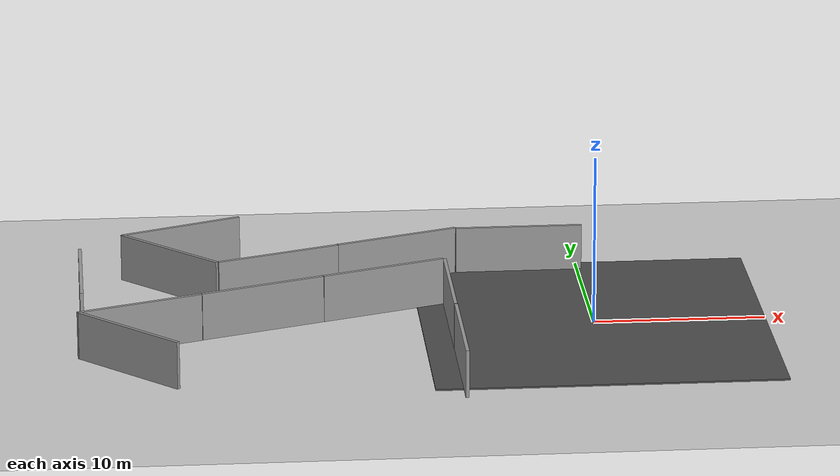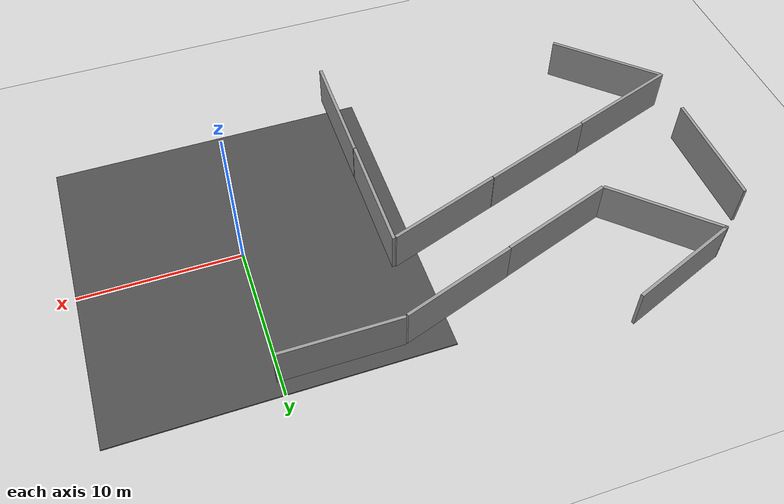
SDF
<sdf version="1.6">
 <world name="default">
  <light name="sun" type="directional">
   <pose>0 0 10 0 -0 0</pose>
   <diffuse>0.8 0.8 0.8 1</diffuse>
   <specular>0.2 0.2 0.2 1</specular>
   <attenuation>
    <range>1000</range>
    <constant>0.9</constant>
    <linear>0.01</linear>
    <quadratic>0.001</quadratic>
   </attenuation>
   <direction>-0.5 0.1 -0.9</direction>
  </light>
  <model name="ground_plane">
   <static>1</static>
   <link name="link">
    <collision name="collision">
     <geometry><plane><normal>0 0 1</normal><size>100 100</size></plane></geometry>
     <surface><friction><ode><mu>100</mu><mu2>50</mu2></ode></friction></surface>
    </collision>
    <visual name="visual">
     <cast_shadows>0</cast_shadows>
     <geometry><plane><normal>0 0 1</normal><size>100 100</size></plane></geometry>
     <material>
      <script><uri>file://media/materials/scripts/gazebo.material</uri><name>Gazebo/Grey</name></script>
     </material>
    </visual>
   </link>
  </model>
  <model name="asphalt_plane">
   <static>1</static>
   <link name="link">
    <collision name="collision"><geometry><box><size>20 20 0.1</size></box></geometry></collision>
    <visual name="visual">
     <cast_shadows>0</cast_shadows>
     <geometry><box><size>20 20 0.1</size></box></geometry>
     <material>
      <script>
       <uri>model://asphalt_plane/materials/scripts</uri>
       <uri>model://asphalt_plane/materials/textures</uri>
       <name>vrc/asphalt</name>
      </script>
     </material>
    </visual>
   </link>
  </model>
  <physics name="default_physics" default="0" type="ode">
   <ode>
    <solver>
     <type>quick</type>
     <iters>10</iters>
     <sor>1.3</sor>
     <use_dynamic_moi_rescaling>0</use_dynamic_moi_rescaling>
    </solver>
    <constraints>
     <cfm>0</cfm>
     <erp>0.2</erp>
     <contact_max_correcting_vel>100</contact_max_correcting_vel>
     <contact_surface_layer>0.001</contact_surface_layer>
    </constraints>
   </ode>
   <max_step_size>0.002</max_step_size>
   <real_time_factor>1</real_time_factor>
   <real_time_update_rate>500</real_time_update_rate>
  </physics>
  <model name="grey_wall">
   <static>1</static>
   <link name="link">
    <pose>0 0 1.4 0 -0 0</pose>
    <collision name="collision"><geometry><box><size>7.5 0.2 2.8</size></box></geometry></collision>
    <visual name="visual">
     <cast_shadows>0</cast_shadows>
     <geometry><box><size>7.5 0.2 2.8</size></box></geometry>
     <material>
      <script>
       <uri>model://grey_wall/materials/scripts</uri>
       <uri>model://grey_wall/materials/textures</uri>
       <name>vrc/grey_wall</name>
      </script>
     </material>
    </visual>
   </link>
   <pose>-8.34545 0 0 0 0 -1.57</pose>
  </model>
  <model name="grey_wall2">
   <static>1</static>
   <link name="link">
    <pose>0 0 1.4 0 -0 0</pose>
    <collision name="collision"><geometry><box><size>7.5 0.2 2.8</size></box></geometry></collision>
    <visual name="visual">
     <cast_shadows>0</cast_shadows>
     <geometry><box><size>7.5 0.2 2.8</size></box></geometry>
     <material>
      <script>
       <uri>model://grey_wall/materials/scripts</uri>
       <uri>model://grey_wall/materials/textures</uri>
       <name>vrc/grey_wall</name>
      </script>
     </material>
    </visual>
   </link>
   <pose>-3.5 9 0 0 -0 0</pose>
  </model>
  <gravity>0 0 -9.8066</gravity>
  <magnetic_field>6e-06 2.3e-05 -4.2e-05</magnetic_field>
  <atmosphere type="adiabatic"/>
  <scene><ambient>0.4 0.4 0.4 1</ambient><background>0.7 0.7 0.7 1</background><shadows>1</shadows></scene>
  <spherical_coordinates>
   <surface_model>EARTH_WGS84</surface_model>
   <latitude_deg>0</latitude_deg>
   <longitude_deg>0</longitude_deg>
   <elevation>0</elevation>
   <heading_deg>0</heading_deg>
  </spherical_coordinates>
  <model name="grey_wall_clone">
   <static>1</static>
   <link name="link">
    <pose>0 0 1.4 0 -0 0</pose>
    <collision name="collision"><geometry><box><size>7.5 0.2 2.8</size></box></geometry></collision>
    <visual name="visual">
     <cast_shadows>0</cast_shadows>
     <geometry><box><size>7.5 0.2 2.8</size></box></geometry>
     <material>
      <script>
       <uri>model://grey_wall/materials/scripts</uri>
       <uri>model://grey_wall/materials/textures</uri>
       <name>vrc/grey_wall</name>
      </script>
     </material>
    </visual>
   </link>
   <pose>-8.32494 -7.53606 0 0 0 -1.57</pose>
  </model>
  <model name="grey_wall2_clone">
   <static>1</static>
   <link name="link">
    <pose>0 0 1.4 0 -0 0</pose>
    <collision name="collision"><geometry><box><size>7.5 0.2 2.8</size></box></geometry></collision>
    <visual name="visual">
     <cast_shadows>0</cast_shadows>
     <geometry><box><size>7.5 0.2 2.8</size></box></geometry>
     <material>
      <script>
       <uri>model://grey_wall/materials/scripts</uri>
       <uri>model://grey_wall/materials/textures</uri>
       <name>vrc/grey_wall</name>
      </script>
     </material>
    </visual>
   </link>
   <pose>-10.8707 7.76517 0.049183 0 -0 0.327378</pose>
  </model>
  <model name="grey_wall2_clone_clone">
   <static>1</static>
   <link name="link">
    <pose>0 0 1.4 0 -0 0</pose>
    <collision name="collision"><geometry><box><size>7.5 0.2 2.8</size></box></geometry></collision>
    <visual name="visual">
     <cast_shadows>0</cast_shadows>
     <geometry><box><size>7.5 0.2 2.8</size></box></geometry>
     <material>
      <script>
       <uri>model://grey_wall/materials/scripts</uri>
       <uri>model://grey_wall/materials/textures</uri>
       <name>vrc/grey_wall</name>
      </script>
     </material>
    </visual>
   </link>
   <pose>-12.0199 2.49147 0.049183 0 -0 0.327378</pose>
  </model>
  <model name="grey_wall2_clone_clone_0">
   <static>1</static>
   <link name="link">
    <pose>0 0 1.4 0 -0 0</pose>
    <collision name="collision"><geometry><box><size>7.5 0.2 2.8</size></box></geometry></collision>
    <visual name="visual">
     <cast_shadows>0</cast_shadows>
     <geometry><box><size>7.5 0.2 2.8</size></box></geometry>
     <material>
      <script>
       <uri>model://grey_wall/materials/scripts</uri>
       <uri>model://grey_wall/materials/textures</uri>
       <name>vrc/grey_wall</name>
      </script>
     </material>
    </visual>
   </link>
   <pose>-17.976 5.33056 0.049183 0 -0 0.327378</pose>
  </model>
  <model name="grey_wall2_clone_clone_1">
   <static>1</static>
   <link name="link">
    <pose>0 0 1.4 0 -0 0</pose>
    <collision name="collision"><geometry><box><size>7.5 0.2 2.8</size></box></geometry></collision>
    <visual name="visual">
     <cast_shadows>0</cast_shadows>
     <geometry><box><size>7.5 0.2 2.8</size></box></geometry>
     <material>
      <script>
       <uri>model://grey_wall/materials/scripts</uri>
       <uri>model://grey_wall/materials/textures</uri>
       <name>vrc/grey_wall</name>
      </script>
     </material>
    </visual>
   </link>
   <pose>-19.1402 0.085095 0.049183 0 -0 0.327378</pose>
  </model>
  <model name="grey_wall2_clone_clone_0_clone">
   <static>1</static>
   <link name="link">
    <pose>0 0 1.4 0 -0 0</pose>
    <collision name="collision"><geometry><box><size>7.5 0.2 2.8</size></box></geometry></collision>
    <visual name="visual">
     <cast_shadows>0</cast_shadows>
     <geometry><box><size>7.5 0.2 2.8</size></box></geometry>
     <material>
      <script>
       <uri>model://grey_wall/materials/scripts</uri>
       <uri>model://grey_wall/materials/textures</uri>
       <name>vrc/grey_wall</name>
      </script>
     </material>
    </visual>
   </link>
   <pose>-24.316 6.71188 0.049183 0 0 -0.761971</pose>
  </model>
  <model name="grey_wall2_clone_clone_1_clone">
   <static>1</static>
   <link name="link">
    <pose>0 0 1.4 0 -0 0</pose>
    <collision name="collision"><geometry><box><size>7.5 0.2 2.8</size></box></geometry></collision>
    <visual name="visual">
     <cast_shadows>0</cast_shadows>
     <geometry><box><size>7.5 0.2 2.8</size></box></geometry>
     <material>
      <script>
       <uri>model://grey_wall/materials/scripts</uri>
       <uri>model://grey_wall/materials/textures</uri>
       <name>vrc/grey_wall</name>
      </script>
     </material>
    </visual>
   </link>
   <pose>-26.2577 -2.35375 0.049183 0 -0 0.327378</pose>
  </model>
  <model name="grey_wall2_clone_clone_0_clone_clone">
   <static>1</static>
   <link name="link">
    <pose>0 0 1.4 0 -0 0</pose>
    <collision name="collision"><geometry><box><size>7.5 0.2 2.8</size></box></geometry></collision>
    <visual name="visual">
     <cast_shadows>0</cast_shadows>
     <geometry><box><size>7.5 0.2 2.8</size></box></geometry>
     <material>
      <script>
       <uri>model://grey_wall/materials/scripts</uri>
       <uri>model://grey_wall/materials/textures</uri>
       <name>vrc/grey_wall</name>
      </script>
     </material>
    </visual>
   </link>
   <pose>-26.9918 -6.16369 0.049183 0 0 -0.761971</pose>
  </model>
  <model name="grey_wall2_clone_clone_0_clone_clone_0">
   <static>1</static>
   <link name="link">
    <pose>0 0 1.4 0 -0 0</pose>
    <collision name="collision"><geometry><box><size>7.5 0.2 2.8</size></box></geometry></collision>
    <visual name="visual">
     <cast_shadows>0</cast_shadows>
     <geometry><box><size>7.5 0.2 2.8</size></box></geometry>
     <material>
      <script>
       <uri>model://grey_wall/materials/scripts</uri>
       <uri>model://grey_wall/materials/textures</uri>
       <name>vrc/grey_wall</name>
      </script>
     </material>
    </visual>
   </link>
   <pose>-23.4995 10.5882 0.049183 0 0 -2.77302</pose>
  </model>
  <model name="grey_wall_clone_clone">
   <static>1</static>
   <link name="link">
    <pose>0 0 1.4 0 -0 0</pose>
    <collision name="collision"><geometry><box><size>7.5 0.2 2.8</size></box></geometry></collision>
    <visual name="visual">
     <cast_shadows>0</cast_shadows>
     <geometry><box><size>7.5 0.2 2.8</size></box></geometry>
     <material>
      <script>
       <uri>model://grey_wall/materials/scripts</uri>
       <uri>model://grey_wall/materials/textures</uri>
       <name>vrc/grey_wall</name>
      </script>
     </material>
    </visual>
   </link>
   <pose>-29.5281 3.39596 0 0 0 -1.57</pose>
  </model>
 </world>
</sdf>
